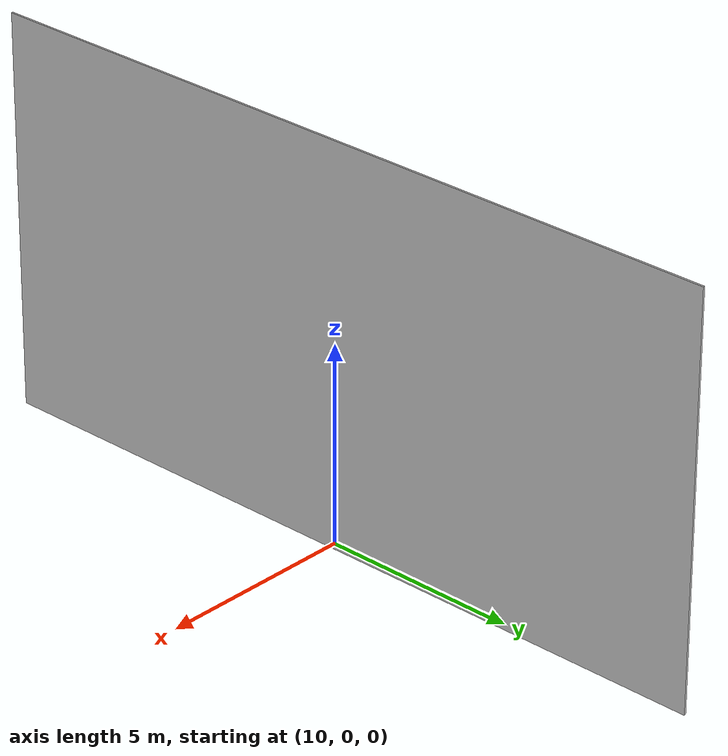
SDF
<?xml version='1.0'?>
<sdf version='1.6'>
  <model name='hmo2'>
    <link name='link_hmo2'>
      <pose frame=''>0 0 0 0 -0 0</pose>
      <inertial>
        <pose frame=''>10 0 4.875000 3.141592 -0 0</pose>
        <mass>0.2</mass>
        <inertia>
          <ixx>0.0411</ixx>
          <ixy>0</ixy>
          <ixz>0</ixz>
          <iyy>0.0478</iyy>
          <iyz>0</iyz>
          <izz>0.0599</izz>
        </inertia>
      </inertial>
      <self_collide>0</self_collide>
      <kinematic>0</kinematic>
      <collision name='Collision'>
      	<pose frame=''>10 0 4.875000 3.141592 -0 0 </pose>
      	<geometry>
      		<box>
      			<size>0.05 20 20</size>
      		</box>
      	</geometry>
      </collision>
      <visual name='visual'>
        <pose frame=''>10 0 4.875000 3.141592 -0 0 </pose>
        <geometry>
          <mesh>
            <uri>/home/armando/Documents/visual_servoing_ws/src/test_gazebo/meshes/hmo_2.dae</uri>
            <scale>1 1 1</scale>
          </mesh>
        </geometry>
        <cast_shadows>1</cast_shadows>
        <transparency>0</transparency>
      </visual>
     </link>
    <static>0</static>
    <allow_auto_disable>0</allow_auto_disable>
  </model>
</sdf>
